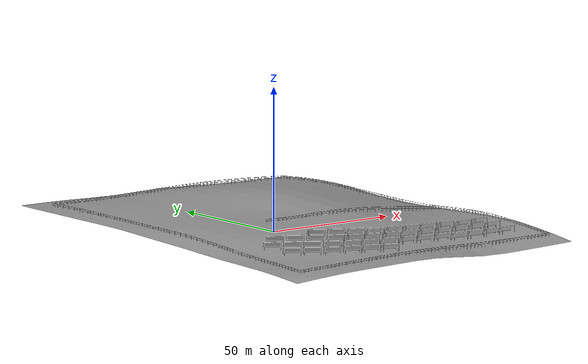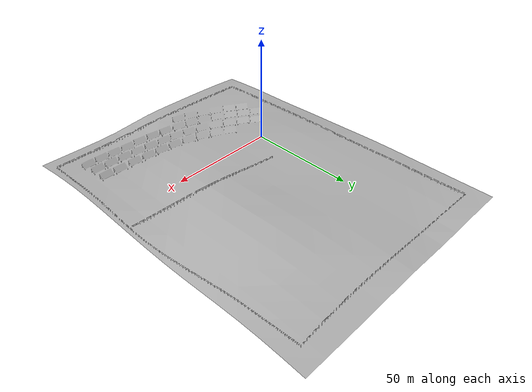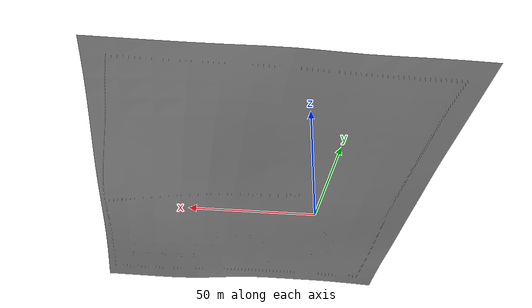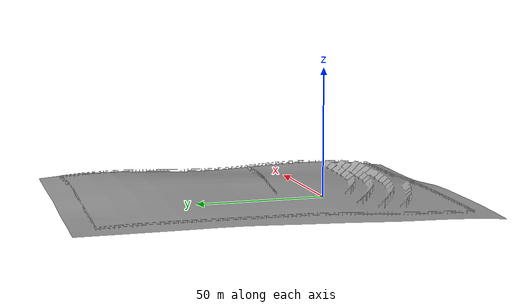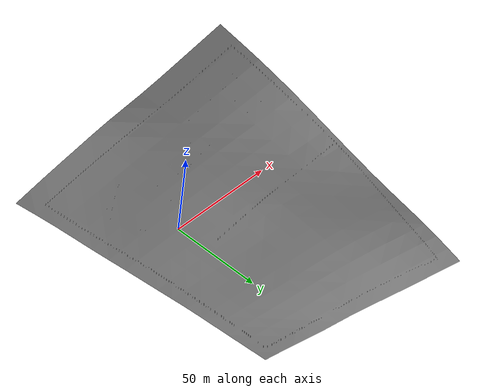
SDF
<?xml version ="1.0"?>
<sdf version="1.6">
  <model name="farm">
    <static>true</static>
    <link name="link">
      <collision name="colision1">
        <pose>0 0 0 0 0 0 </pose>
          <geometry>
            <box><size>2.32 1 1</size></box>
          </geometry>

      </collision>

      <visual name="visual1">
        <cast_shadows>false</cast_shadows>
	<pose> 0 0 0 0 0 0</pose>
        <geometry>
          <mesh>
            <uri>model://farm1/meshes/agriculture_world.dae</uri>

          </mesh>
        </geometry>
      </visual>

    </link>
  </model>
</sdf>
